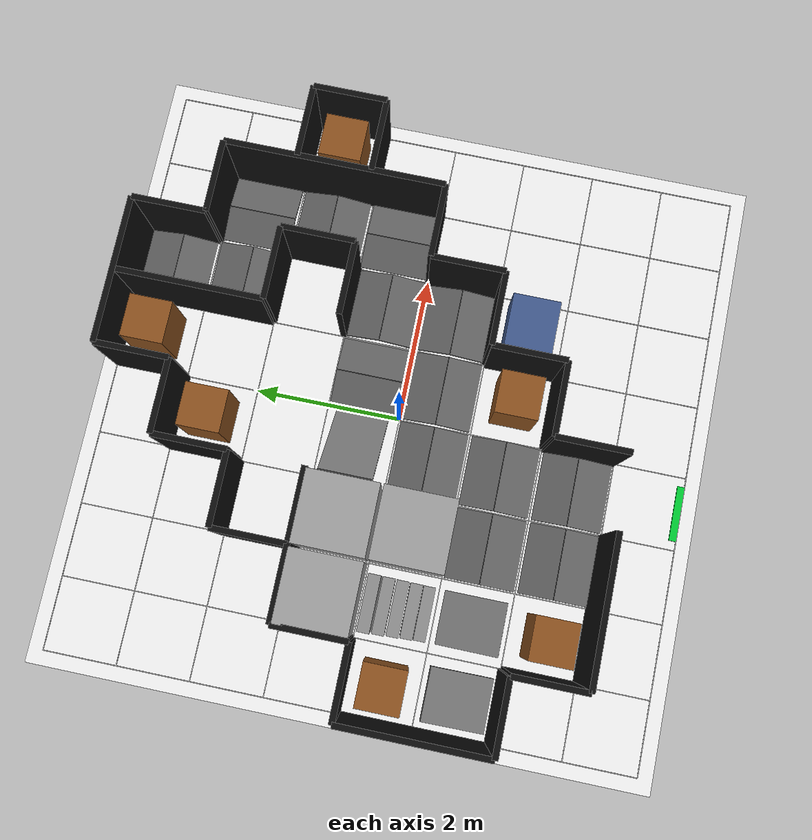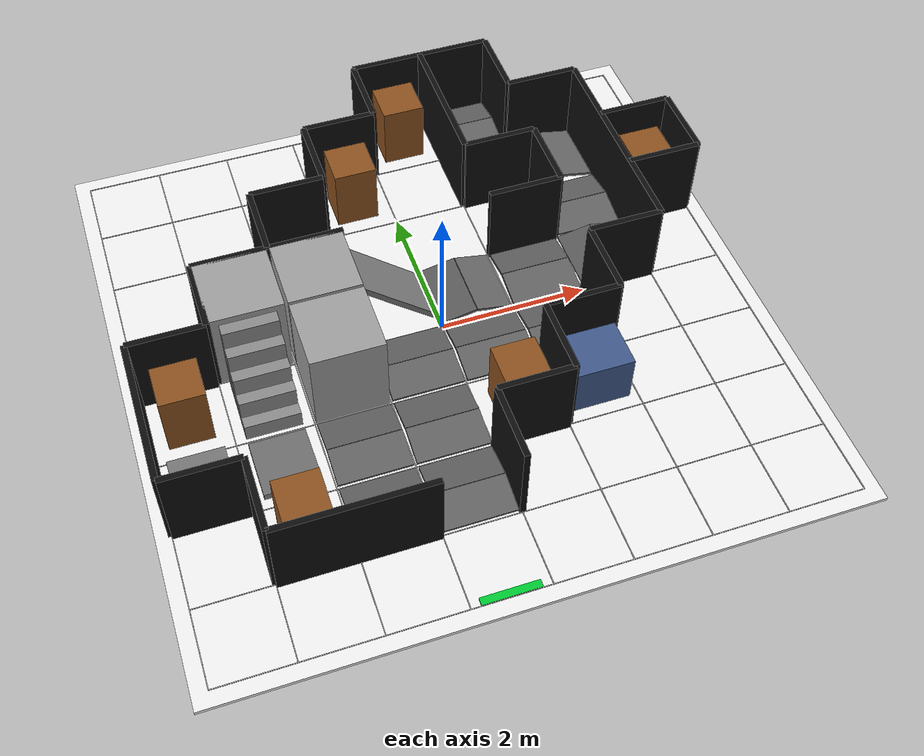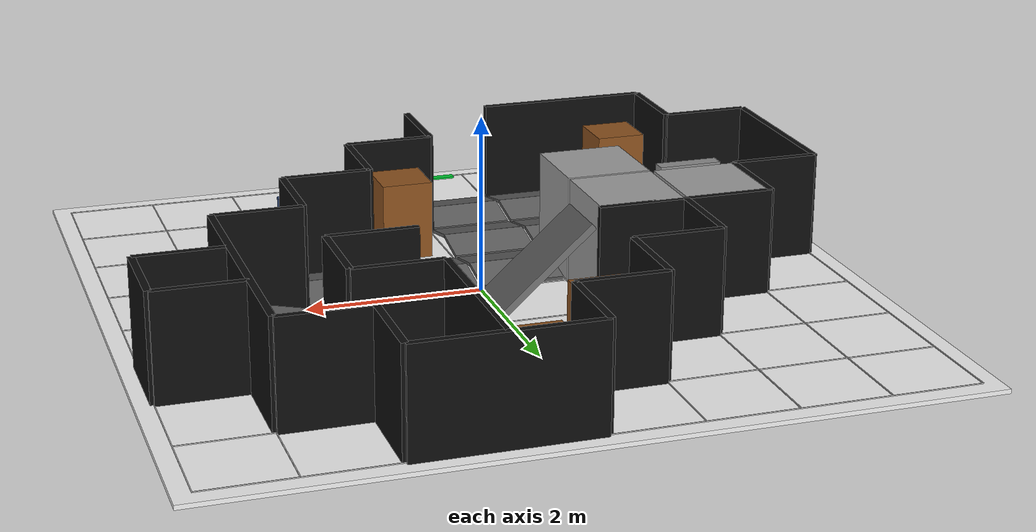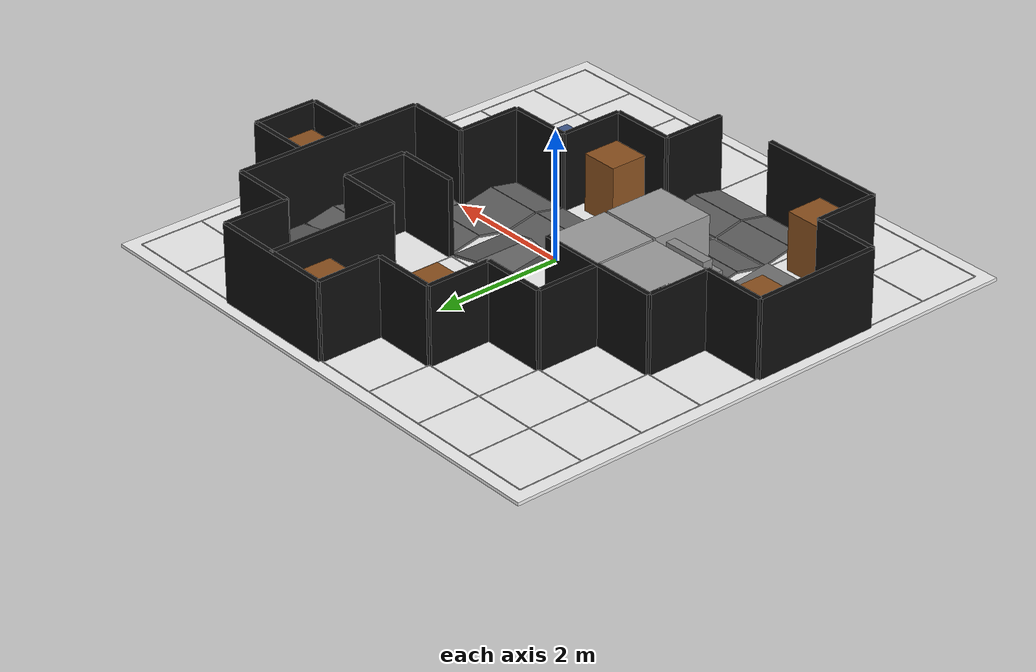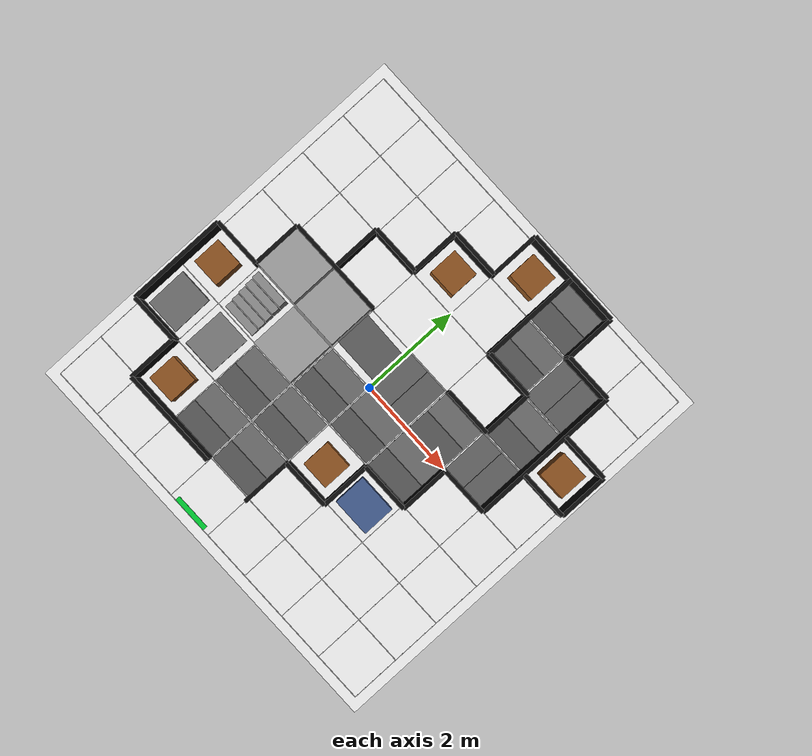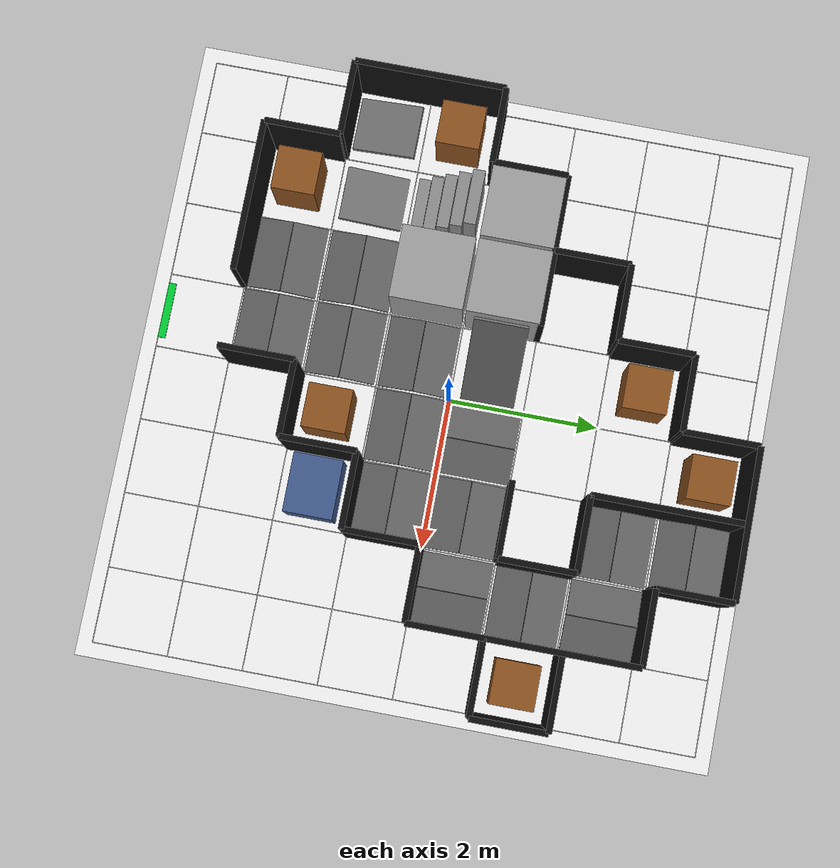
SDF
<?xml version='1.0'?>
<sdf version='1.6'>
  <world name='image_map_world'>
    <gravity>0 0 -9.8</gravity>
    <physics name='default_physics' default='0' type='ode'>
      <max_step_size>0.001</max_step_size>
      <real_time_factor>1</real_time_factor>
      <real_time_update_rate>1000</real_time_update_rate>
    </physics>

    <include>
      <uri>model://sun</uri>
    </include>

    <gui fullscreen='0'>
      <camera name='user_camera'>
        <pose>0 -8 8 0 0.85 1.5708</pose>
      </camera>
    </gui>

  <model name='floor'>
    <static>true</static>
    <pose>0.0000 0.0000 -0.0250 0.000000 0.000000 0.000000</pose>
    <link name='link'>

      <collision name='floor_collision'>
        <geometry><box><size>8.4000 8.4000 0.0500</size></box></geometry>
      </collision>
      <visual name='floor_visual'>
        <geometry><box><size>8.4000 8.4000 0.0500</size></box></geometry>

        <material>
          <ambient>0.95 0.95 0.95 1</ambient>
          <diffuse>0.95 0.95 0.95 1</diffuse>
        </material>
      </visual>
    </link>
  </model>
  <model name='grid_v_0'>
    <static>true</static>
    <pose>-4.0000 0.0000 0.0060 0.000000 0.000000 0.000000</pose>
    <link name='link'>

      <visual name='grid_v_0_visual'>
        <geometry><box><size>0.0100 8.0000 0.0100</size></box></geometry>

        <material>
          <ambient>0.82 0.82 0.82 1</ambient>
          <diffuse>0.82 0.82 0.82 1</diffuse>
        </material>
      </visual>
    </link>
  </model>
  <model name='grid_v_1'>
    <static>true</static>
    <pose>-3.0000 0.0000 0.0060 0.000000 0.000000 0.000000</pose>
    <link name='link'>

      <visual name='grid_v_1_visual'>
        <geometry><box><size>0.0100 8.0000 0.0100</size></box></geometry>

        <material>
          <ambient>0.82 0.82 0.82 1</ambient>
          <diffuse>0.82 0.82 0.82 1</diffuse>
        </material>
      </visual>
    </link>
  </model>
  <model name='grid_v_2'>
    <static>true</static>
    <pose>-2.0000 0.0000 0.0060 0.000000 0.000000 0.000000</pose>
    <link name='link'>

      <visual name='grid_v_2_visual'>
        <geometry><box><size>0.0100 8.0000 0.0100</size></box></geometry>

        <material>
          <ambient>0.82 0.82 0.82 1</ambient>
          <diffuse>0.82 0.82 0.82 1</diffuse>
        </material>
      </visual>
    </link>
  </model>
  <model name='grid_v_3'>
    <static>true</static>
    <pose>-1.0000 0.0000 0.0060 0.000000 0.000000 0.000000</pose>
    <link name='link'>

      <visual name='grid_v_3_visual'>
        <geometry><box><size>0.0100 8.0000 0.0100</size></box></geometry>

        <material>
          <ambient>0.82 0.82 0.82 1</ambient>
          <diffuse>0.82 0.82 0.82 1</diffuse>
        </material>
      </visual>
    </link>
  </model>
  <model name='grid_v_4'>
    <static>true</static>
    <pose>0.0000 0.0000 0.0060 0.000000 0.000000 0.000000</pose>
    <link name='link'>

      <visual name='grid_v_4_visual'>
        <geometry><box><size>0.0100 8.0000 0.0100</size></box></geometry>

        <material>
          <ambient>0.82 0.82 0.82 1</ambient>
          <diffuse>0.82 0.82 0.82 1</diffuse>
        </material>
      </visual>
    </link>
  </model>
  <model name='grid_v_5'>
    <static>true</static>
    <pose>1.0000 0.0000 0.0060 0.000000 0.000000 0.000000</pose>
    <link name='link'>

      <visual name='grid_v_5_visual'>
        <geometry><box><size>0.0100 8.0000 0.0100</size></box></geometry>

        <material>
          <ambient>0.82 0.82 0.82 1</ambient>
          <diffuse>0.82 0.82 0.82 1</diffuse>
        </material>
      </visual>
    </link>
  </model>
  <model name='grid_v_6'>
    <static>true</static>
    <pose>2.0000 0.0000 0.0060 0.000000 0.000000 0.000000</pose>
    <link name='link'>

      <visual name='grid_v_6_visual'>
        <geometry><box><size>0.0100 8.0000 0.0100</size></box></geometry>

        <material>
          <ambient>0.82 0.82 0.82 1</ambient>
          <diffuse>0.82 0.82 0.82 1</diffuse>
        </material>
      </visual>
    </link>
  </model>
  <model name='grid_v_7'>
    <static>true</static>
    <pose>3.0000 0.0000 0.0060 0.000000 0.000000 0.000000</pose>
    <link name='link'>

      <visual name='grid_v_7_visual'>
        <geometry><box><size>0.0100 8.0000 0.0100</size></box></geometry>

        <material>
          <ambient>0.82 0.82 0.82 1</ambient>
          <diffuse>0.82 0.82 0.82 1</diffuse>
        </material>
      </visual>
    </link>
  </model>
  <model name='grid_v_8'>
    <static>true</static>
    <pose>4.0000 0.0000 0.0060 0.000000 0.000000 0.000000</pose>
    <link name='link'>

      <visual name='grid_v_8_visual'>
        <geometry><box><size>0.0100 8.0000 0.0100</size></box></geometry>

        <material>
          <ambient>0.82 0.82 0.82 1</ambient>
          <diffuse>0.82 0.82 0.82 1</diffuse>
        </material>
      </visual>
    </link>
  </model>
  <model name='grid_h_0'>
    <static>true</static>
    <pose>0.0000 4.0000 0.0060 0.000000 0.000000 0.000000</pose>
    <link name='link'>

      <visual name='grid_h_0_visual'>
        <geometry><box><size>8.0000 0.0100 0.0100</size></box></geometry>

        <material>
          <ambient>0.82 0.82 0.82 1</ambient>
          <diffuse>0.82 0.82 0.82 1</diffuse>
        </material>
      </visual>
    </link>
  </model>
  <model name='grid_h_1'>
    <static>true</static>
    <pose>0.0000 3.0000 0.0060 0.000000 0.000000 0.000000</pose>
    <link name='link'>

      <visual name='grid_h_1_visual'>
        <geometry><box><size>8.0000 0.0100 0.0100</size></box></geometry>

        <material>
          <ambient>0.82 0.82 0.82 1</ambient>
          <diffuse>0.82 0.82 0.82 1</diffuse>
        </material>
      </visual>
    </link>
  </model>
  <model name='grid_h_2'>
    <static>true</static>
    <pose>0.0000 2.0000 0.0060 0.000000 0.000000 0.000000</pose>
    <link name='link'>

      <visual name='grid_h_2_visual'>
        <geometry><box><size>8.0000 0.0100 0.0100</size></box></geometry>

        <material>
          <ambient>0.82 0.82 0.82 1</ambient>
          <diffuse>0.82 0.82 0.82 1</diffuse>
        </material>
      </visual>
    </link>
  </model>
  <model name='grid_h_3'>
    <static>true</static>
    <pose>0.0000 1.0000 0.0060 0.000000 0.000000 0.000000</pose>
    <link name='link'>

      <visual name='grid_h_3_visual'>
        <geometry><box><size>8.0000 0.0100 0.0100</size></box></geometry>

        <material>
          <ambient>0.82 0.82 0.82 1</ambient>
          <diffuse>0.82 0.82 0.82 1</diffuse>
        </material>
      </visual>
    </link>
  </model>
  <model name='grid_h_4'>
    <static>true</static>
    <pose>0.0000 0.0000 0.0060 0.000000 0.000000 0.000000</pose>
    <link name='link'>

      <visual name='grid_h_4_visual'>
        <geometry><box><size>8.0000 0.0100 0.0100</size></box></geometry>

        <material>
          <ambient>0.82 0.82 0.82 1</ambient>
          <diffuse>0.82 0.82 0.82 1</diffuse>
        </material>
      </visual>
    </link>
  </model>
  <model name='grid_h_5'>
    <static>true</static>
    <pose>0.0000 -1.0000 0.0060 0.000000 0.000000 0.000000</pose>
    <link name='link'>

      <visual name='grid_h_5_visual'>
        <geometry><box><size>8.0000 0.0100 0.0100</size></box></geometry>

        <material>
          <ambient>0.82 0.82 0.82 1</ambient>
          <diffuse>0.82 0.82 0.82 1</diffuse>
        </material>
      </visual>
    </link>
  </model>
  <model name='grid_h_6'>
    <static>true</static>
    <pose>0.0000 -2.0000 0.0060 0.000000 0.000000 0.000000</pose>
    <link name='link'>

      <visual name='grid_h_6_visual'>
        <geometry><box><size>8.0000 0.0100 0.0100</size></box></geometry>

        <material>
          <ambient>0.82 0.82 0.82 1</ambient>
          <diffuse>0.82 0.82 0.82 1</diffuse>
        </material>
      </visual>
    </link>
  </model>
  <model name='grid_h_7'>
    <static>true</static>
    <pose>0.0000 -3.0000 0.0060 0.000000 0.000000 0.000000</pose>
    <link name='link'>

      <visual name='grid_h_7_visual'>
        <geometry><box><size>8.0000 0.0100 0.0100</size></box></geometry>

        <material>
          <ambient>0.82 0.82 0.82 1</ambient>
          <diffuse>0.82 0.82 0.82 1</diffuse>
        </material>
      </visual>
    </link>
  </model>
  <model name='grid_h_8'>
    <static>true</static>
    <pose>0.0000 -4.0000 0.0060 0.000000 0.000000 0.000000</pose>
    <link name='link'>

      <visual name='grid_h_8_visual'>
        <geometry><box><size>8.0000 0.0100 0.0100</size></box></geometry>

        <material>
          <ambient>0.82 0.82 0.82 1</ambient>
          <diffuse>0.82 0.82 0.82 1</diffuse>
        </material>
      </visual>
    </link>
  </model>
  <model name='wall_h_01'>
    <static>true</static>
    <pose>1.0000 4.0000 0.6000 0.000000 0.000000 0.000000</pose>
    <link name='link'>

      <collision name='wall_h_01_collision'>
        <geometry><box><size>2.0000 0.0800 1.2000</size></box></geometry>
      </collision>
      <visual name='wall_h_01_visual'>
        <geometry><box><size>2.0000 0.0800 1.2000</size></box></geometry>

        <material>
          <ambient>0.05 0.05 0.05 1</ambient>
          <diffuse>0.05 0.05 0.05 1</diffuse>
        </material>
      </visual>
    </link>
  </model>
  <model name='wall_h_02'>
    <static>true</static>
    <pose>-0.5000 3.0000 0.6000 0.000000 0.000000 0.000000</pose>
    <link name='link'>

      <collision name='wall_h_02_collision'>
        <geometry><box><size>1.0000 0.0800 1.2000</size></box></geometry>
      </collision>
      <visual name='wall_h_02_visual'>
        <geometry><box><size>1.0000 0.0800 1.2000</size></box></geometry>

        <material>
          <ambient>0.05 0.05 0.05 1</ambient>
          <diffuse>0.05 0.05 0.05 1</diffuse>
        </material>
      </visual>
    </link>
  </model>
  <model name='wall_h_03'>
    <static>true</static>
    <pose>2.5000 3.0000 0.6000 0.000000 0.000000 0.000000</pose>
    <link name='link'>

      <collision name='wall_h_03_collision'>
        <geometry><box><size>1.0000 0.0800 1.2000</size></box></geometry>
      </collision>
      <visual name='wall_h_03_visual'>
        <geometry><box><size>1.0000 0.0800 1.2000</size></box></geometry>

        <material>
          <ambient>0.05 0.05 0.05 1</ambient>
          <diffuse>0.05 0.05 0.05 1</diffuse>
        </material>
      </visual>
    </link>
  </model>
  <model name='wall_h_04'>
    <static>true</static>
    <pose>-1.5000 2.0000 0.6000 0.000000 0.000000 0.000000</pose>
    <link name='link'>

      <collision name='wall_h_04_collision'>
        <geometry><box><size>1.0000 0.0800 1.2000</size></box></geometry>
      </collision>
      <visual name='wall_h_04_visual'>
        <geometry><box><size>1.0000 0.0800 1.2000</size></box></geometry>

        <material>
          <ambient>0.05 0.05 0.05 1</ambient>
          <diffuse>0.05 0.05 0.05 1</diffuse>
        </material>
      </visual>
    </link>
  </model>
  <model name='wall_h_05'>
    <static>true</static>
    <pose>1.5000 2.0000 0.6000 0.000000 0.000000 0.000000</pose>
    <link name='link'>

      <collision name='wall_h_05_collision'>
        <geometry><box><size>1.0000 0.0800 1.2000</size></box></geometry>
      </collision>
      <visual name='wall_h_05_visual'>
        <geometry><box><size>1.0000 0.0800 1.2000</size></box></geometry>

        <material>
          <ambient>0.05 0.05 0.05 1</ambient>
          <diffuse>0.05 0.05 0.05 1</diffuse>
        </material>
      </visual>
    </link>
  </model>
  <model name='wall_h_06'>
    <static>true</static>
    <pose>3.5000 2.0000 0.6000 0.000000 0.000000 0.000000</pose>
    <link name='link'>

      <collision name='wall_h_06_collision'>
        <geometry><box><size>1.0000 0.0800 1.2000</size></box></geometry>
      </collision>
      <visual name='wall_h_06_visual'>
        <geometry><box><size>1.0000 0.0800 1.2000</size></box></geometry>

        <material>
          <ambient>0.05 0.05 0.05 1</ambient>
          <diffuse>0.05 0.05 0.05 1</diffuse>
        </material>
      </visual>
    </link>
  </model>
  <model name='wall_h_07'>
    <static>true</static>
    <pose>-2.0000 1.0000 0.6000 0.000000 0.000000 0.000000</pose>
    <link name='link'>

      <collision name='wall_h_07_collision'>
        <geometry><box><size>2.0000 0.0800 1.2000</size></box></geometry>
      </collision>
      <visual name='wall_h_07_visual'>
        <geometry><box><size>2.0000 0.0800 1.2000</size></box></geometry>

        <material>
          <ambient>0.05 0.05 0.05 1</ambient>
          <diffuse>0.05 0.05 0.05 1</diffuse>
        </material>
      </visual>
    </link>
  </model>
  <model name='wall_h_08'>
    <static>true</static>
    <pose>1.5000 1.0000 0.6000 0.000000 0.000000 0.000000</pose>
    <link name='link'>

      <collision name='wall_h_08_collision'>
        <geometry><box><size>1.0000 0.0800 1.2000</size></box></geometry>
      </collision>
      <visual name='wall_h_08_visual'>
        <geometry><box><size>1.0000 0.0800 1.2000</size></box></geometry>

        <material>
          <ambient>0.05 0.05 0.05 1</ambient>
          <diffuse>0.05 0.05 0.05 1</diffuse>
        </material>
      </visual>
    </link>
  </model>
  <model name='wall_h_09'>
    <static>true</static>
    <pose>3.5000 1.0000 0.6000 0.000000 0.000000 0.000000</pose>
    <link name='link'>

      <collision name='wall_h_09_collision'>
        <geometry><box><size>1.0000 0.0800 1.2000</size></box></geometry>
      </collision>
      <visual name='wall_h_09_visual'>
        <geometry><box><size>1.0000 0.0800 1.2000</size></box></geometry>

        <material>
          <ambient>0.05 0.05 0.05 1</ambient>
          <diffuse>0.05 0.05 0.05 1</diffuse>
        </material>
      </visual>
    </link>
  </model>
  <model name='wall_h_10'>
    <static>true</static>
    <pose>-3.5000 0.0000 0.6000 0.000000 0.000000 0.000000</pose>
    <link name='link'>

      <collision name='wall_h_10_collision'>
        <geometry><box><size>1.0000 0.0800 1.2000</size></box></geometry>
      </collision>
      <visual name='wall_h_10_visual'>
        <geometry><box><size>1.0000 0.0800 1.2000</size></box></geometry>

        <material>
          <ambient>0.05 0.05 0.05 1</ambient>
          <diffuse>0.05 0.05 0.05 1</diffuse>
        </material>
      </visual>
    </link>
  </model>
  <model name='wall_h_11'>
    <static>true</static>
    <pose>2.5000 0.0000 0.6000 0.000000 0.000000 0.000000</pose>
    <link name='link'>

      <collision name='wall_h_11_collision'>
        <geometry><box><size>1.0000 0.0800 1.2000</size></box></geometry>
      </collision>
      <visual name='wall_h_11_visual'>
        <geometry><box><size>1.0000 0.0800 1.2000</size></box></geometry>

        <material>
          <ambient>0.05 0.05 0.05 1</ambient>
          <diffuse>0.05 0.05 0.05 1</diffuse>
        </material>
      </visual>
    </link>
  </model>
  <model name='wall_h_12'>
    <static>true</static>
    <pose>1.5000 -1.0000 0.6000 0.000000 0.000000 0.000000</pose>
    <link name='link'>

      <collision name='wall_h_12_collision'>
        <geometry><box><size>1.0000 0.0800 1.2000</size></box></geometry>
      </collision>
      <visual name='wall_h_12_visual'>
        <geometry><box><size>1.0000 0.0800 1.2000</size></box></geometry>

        <material>
          <ambient>0.05 0.05 0.05 1</ambient>
          <diffuse>0.05 0.05 0.05 1</diffuse>
        </material>
      </visual>
    </link>
  </model>
  <model name='wall_h_13'>
    <static>true</static>
    <pose>-3.5000 -2.0000 0.6000 0.000000 0.000000 0.000000</pose>
    <link name='link'>

      <collision name='wall_h_13_collision'>
        <geometry><box><size>1.0000 0.0800 1.2000</size></box></geometry>
      </collision>
      <visual name='wall_h_13_visual'>
        <geometry><box><size>1.0000 0.0800 1.2000</size></box></geometry>

        <material>
          <ambient>0.05 0.05 0.05 1</ambient>
          <diffuse>0.05 0.05 0.05 1</diffuse>
        </material>
      </visual>
    </link>
  </model>
  <model name='wall_h_14'>
    <static>true</static>
    <pose>0.5000 -2.0000 0.6000 0.000000 0.000000 0.000000</pose>
    <link name='link'>

      <collision name='wall_h_14_collision'>
        <geometry><box><size>1.0000 0.0800 1.2000</size></box></geometry>
      </collision>
      <visual name='wall_h_14_visual'>
        <geometry><box><size>1.0000 0.0800 1.2000</size></box></geometry>

        <material>
          <ambient>0.05 0.05 0.05 1</ambient>
          <diffuse>0.05 0.05 0.05 1</diffuse>
        </material>
      </visual>
    </link>
  </model>
  <model name='wall_h_15'>
    <static>true</static>
    <pose>-2.0000 -3.0000 0.6000 0.000000 0.000000 0.000000</pose>
    <link name='link'>

      <collision name='wall_h_15_collision'>
        <geometry><box><size>2.0000 0.0800 1.2000</size></box></geometry>
      </collision>
      <visual name='wall_h_15_visual'>
        <geometry><box><size>2.0000 0.0800 1.2000</size></box></geometry>

        <material>
          <ambient>0.05 0.05 0.05 1</ambient>
          <diffuse>0.05 0.05 0.05 1</diffuse>
        </material>
      </visual>
    </link>
  </model>
  <model name='wall_v_01'>
    <static>true</static>
    <pose>0.0000 3.5000 0.6000 0.000000 0.000000 0.000000</pose>
    <link name='link'>

      <collision name='wall_v_01_collision'>
        <geometry><box><size>0.0800 1.0000 1.2000</size></box></geometry>
      </collision>
      <visual name='wall_v_01_visual'>
        <geometry><box><size>0.0800 1.0000 1.2000</size></box></geometry>

        <material>
          <ambient>0.05 0.05 0.05 1</ambient>
          <diffuse>0.05 0.05 0.05 1</diffuse>
        </material>
      </visual>
    </link>
  </model>
  <model name='wall_v_02'>
    <static>true</static>
    <pose>1.0000 3.0000 0.6000 0.000000 0.000000 0.000000</pose>
    <link name='link'>

      <collision name='wall_v_02_collision'>
        <geometry><box><size>0.0800 2.0000 1.2000</size></box></geometry>
      </collision>
      <visual name='wall_v_02_visual'>
        <geometry><box><size>0.0800 2.0000 1.2000</size></box></geometry>

        <material>
          <ambient>0.05 0.05 0.05 1</ambient>
          <diffuse>0.05 0.05 0.05 1</diffuse>
        </material>
      </visual>
    </link>
  </model>
  <model name='wall_v_03'>
    <static>true</static>
    <pose>2.0000 3.5000 0.6000 0.000000 0.000000 0.000000</pose>
    <link name='link'>

      <collision name='wall_v_03_collision'>
        <geometry><box><size>0.0800 1.0000 1.2000</size></box></geometry>
      </collision>
      <visual name='wall_v_03_visual'>
        <geometry><box><size>0.0800 1.0000 1.2000</size></box></geometry>

        <material>
          <ambient>0.05 0.05 0.05 1</ambient>
          <diffuse>0.05 0.05 0.05 1</diffuse>
        </material>
      </visual>
    </link>
  </model>
  <model name='wall_v_04'>
    <static>true</static>
    <pose>-1.0000 2.5000 0.6000 0.000000 0.000000 0.000000</pose>
    <link name='link'>

      <collision name='wall_v_04_collision'>
        <geometry><box><size>0.0800 1.0000 1.2000</size></box></geometry>
      </collision>
      <visual name='wall_v_04_visual'>
        <geometry><box><size>0.0800 1.0000 1.2000</size></box></geometry>

        <material>
          <ambient>0.05 0.05 0.05 1</ambient>
          <diffuse>0.05 0.05 0.05 1</diffuse>
        </material>
      </visual>
    </link>
  </model>
  <model name='wall_v_05'>
    <static>true</static>
    <pose>3.0000 1.5000 0.6000 0.000000 0.000000 0.000000</pose>
    <link name='link'>

      <collision name='wall_v_05_collision'>
        <geometry><box><size>0.0800 3.0000 1.2000</size></box></geometry>
      </collision>
      <visual name='wall_v_05_visual'>
        <geometry><box><size>0.0800 3.0000 1.2000</size></box></geometry>

        <material>
          <ambient>0.05 0.05 0.05 1</ambient>
          <diffuse>0.05 0.05 0.05 1</diffuse>
        </material>
      </visual>
    </link>
  </model>
  <model name='wall_v_06'>
    <static>true</static>
    <pose>4.0000 1.5000 0.6000 0.000000 0.000000 0.000000</pose>
    <link name='link'>

      <collision name='wall_v_06_collision'>
        <geometry><box><size>0.0800 1.0000 1.2000</size></box></geometry>
      </collision>
      <visual name='wall_v_06_visual'>
        <geometry><box><size>0.0800 1.0000 1.2000</size></box></geometry>

        <material>
          <ambient>0.05 0.05 0.05 1</ambient>
          <diffuse>0.05 0.05 0.05 1</diffuse>
        </material>
      </visual>
    </link>
  </model>
  <model name='wall_v_07'>
    <static>true</static>
    <pose>-2.0000 1.5000 0.6000 0.000000 0.000000 0.000000</pose>
    <link name='link'>

      <collision name='wall_v_07_collision'>
        <geometry><box><size>0.0800 1.0000 1.2000</size></box></geometry>
      </collision>
      <visual name='wall_v_07_visual'>
        <geometry><box><size>0.0800 1.0000 1.2000</size></box></geometry>

        <material>
          <ambient>0.05 0.05 0.05 1</ambient>
          <diffuse>0.05 0.05 0.05 1</diffuse>
        </material>
      </visual>
    </link>
  </model>
  <model name='wall_v_08'>
    <static>true</static>
    <pose>-4.0000 -1.0000 0.6000 0.000000 0.000000 0.000000</pose>
    <link name='link'>

      <collision name='wall_v_08_collision'>
        <geometry><box><size>0.0800 2.0000 1.2000</size></box></geometry>
      </collision>
      <visual name='wall_v_08_visual'>
        <geometry><box><size>0.0800 2.0000 1.2000</size></box></geometry>

        <material>
          <ambient>0.05 0.05 0.05 1</ambient>
          <diffuse>0.05 0.05 0.05 1</diffuse>
        </material>
      </visual>
    </link>
  </model>
  <model name='wall_v_09'>
    <static>true</static>
    <pose>-3.0000 0.5000 0.6000 0.000000 0.000000 0.000000</pose>
    <link name='link'>

      <collision name='wall_v_09_collision'>
        <geometry><box><size>0.0800 1.0000 1.2000</size></box></geometry>
      </collision>
      <visual name='wall_v_09_visual'>
        <geometry><box><size>0.0800 1.0000 1.2000</size></box></geometry>

        <material>
          <ambient>0.05 0.05 0.05 1</ambient>
          <diffuse>0.05 0.05 0.05 1</diffuse>
        </material>
      </visual>
    </link>
  </model>
  <model name='wall_v_10'>
    <static>true</static>
    <pose>2.0000 1.5000 0.6000 0.000000 0.000000 0.000000</pose>
    <link name='link'>

      <collision name='wall_v_10_collision'>
        <geometry><box><size>0.0800 1.0000 1.2000</size></box></geometry>
      </collision>
      <visual name='wall_v_10_visual'>
        <geometry><box><size>0.0800 1.0000 1.2000</size></box></geometry>

        <material>
          <ambient>0.05 0.05 0.05 1</ambient>
          <diffuse>0.05 0.05 0.05 1</diffuse>
        </material>
      </visual>
    </link>
  </model>
  <model name='wall_v_11'>
    <static>true</static>
    <pose>2.0000 -0.5000 0.6000 0.000000 0.000000 0.000000</pose>
    <link name='link'>

      <collision name='wall_v_11_collision'>
        <geometry><box><size>0.0800 1.0000 1.2000</size></box></geometry>
      </collision>
      <visual name='wall_v_11_visual'>
        <geometry><box><size>0.0800 1.0000 1.2000</size></box></geometry>

        <material>
          <ambient>0.05 0.05 0.05 1</ambient>
          <diffuse>0.05 0.05 0.05 1</diffuse>
        </material>
      </visual>
    </link>
  </model>
  <model name='wall_v_12'>
    <static>true</static>
    <pose>-3.0000 -2.5000 0.6000 0.000000 0.000000 0.000000</pose>
    <link name='link'>

      <collision name='wall_v_12_collision'>
        <geometry><box><size>0.0800 1.0000 1.2000</size></box></geometry>
      </collision>
      <visual name='wall_v_12_visual'>
        <geometry><box><size>0.0800 1.0000 1.2000</size></box></geometry>

        <material>
          <ambient>0.05 0.05 0.05 1</ambient>
          <diffuse>0.05 0.05 0.05 1</diffuse>
        </material>
      </visual>
    </link>
  </model>
  <model name='wall_v_13'>
    <static>true</static>
    <pose>0.0000 -2.5000 0.6000 0.000000 0.000000 0.000000</pose>
    <link name='link'>

      <collision name='wall_v_13_collision'>
        <geometry><box><size>0.0800 1.0000 1.2000</size></box></geometry>
      </collision>
      <visual name='wall_v_13_visual'>
        <geometry><box><size>0.0800 1.0000 1.2000</size></box></geometry>

        <material>
          <ambient>0.05 0.05 0.05 1</ambient>
          <diffuse>0.05 0.05 0.05 1</diffuse>
        </material>
      </visual>
    </link>
  </model>
  <model name='wall_v_14'>
    <static>true</static>
    <pose>1.0000 -1.5000 0.6000 0.000000 0.000000 0.000000</pose>
    <link name='link'>

      <collision name='wall_v_14_collision'>
        <geometry><box><size>0.0800 1.0000 1.2000</size></box></geometry>
      </collision>
      <visual name='wall_v_14_visual'>
        <geometry><box><size>0.0800 1.0000 1.2000</size></box></geometry>

        <material>
          <ambient>0.05 0.05 0.05 1</ambient>
          <diffuse>0.05 0.05 0.05 1</diffuse>
        </material>
      </visual>
    </link>
  </model>
  <model name='box_1'>
    <static>true</static>
    <pose>0.5000 3.5000 0.4500 0.000000 0.000000 0.000000</pose>
    <link name='link'>

      <collision name='box_1_collision'>
        <geometry><box><size>0.5800 0.5800 0.9000</size></box></geometry>
      </collision>
      <visual name='box_1_visual'>
        <geometry><box><size>0.5800 0.5800 0.9000</size></box></geometry>

        <material>
          <ambient>0.55 0.32 0.12 1</ambient>
          <diffuse>0.55 0.32 0.12 1</diffuse>
        </material>
      </visual>
    </link>
  </model>
  <model name='box_2'>
    <static>true</static>
    <pose>-0.5000 2.5000 0.4500 0.000000 0.000000 0.000000</pose>
    <link name='link'>

      <collision name='box_2_collision'>
        <geometry><box><size>0.5800 0.5800 0.9000</size></box></geometry>
      </collision>
      <visual name='box_2_visual'>
        <geometry><box><size>0.5800 0.5800 0.9000</size></box></geometry>

        <material>
          <ambient>0.55 0.32 0.12 1</ambient>
          <diffuse>0.55 0.32 0.12 1</diffuse>
        </material>
      </visual>
    </link>
  </model>
  <model name='box_3'>
    <static>true</static>
    <pose>3.5000 1.5000 0.4500 0.000000 0.000000 0.000000</pose>
    <link name='link'>

      <collision name='box_3_collision'>
        <geometry><box><size>0.5800 0.5800 0.9000</size></box></geometry>
      </collision>
      <visual name='box_3_visual'>
        <geometry><box><size>0.5800 0.5800 0.9000</size></box></geometry>

        <material>
          <ambient>0.55 0.32 0.12 1</ambient>
          <diffuse>0.55 0.32 0.12 1</diffuse>
        </material>
      </visual>
    </link>
  </model>
  <model name='box_4'>
    <static>true</static>
    <pose>-3.5000 -0.5000 0.4500 0.000000 0.000000 0.000000</pose>
    <link name='link'>

      <collision name='box_4_collision'>
        <geometry><box><size>0.5800 0.5800 0.9000</size></box></geometry>
      </collision>
      <visual name='box_4_visual'>
        <geometry><box><size>0.5800 0.5800 0.9000</size></box></geometry>

        <material>
          <ambient>0.55 0.32 0.12 1</ambient>
          <diffuse>0.55 0.32 0.12 1</diffuse>
        </material>
      </visual>
    </link>
  </model>
  <model name='box_5'>
    <static>true</static>
    <pose>0.5000 -1.5000 0.4500 0.000000 0.000000 0.000000</pose>
    <link name='link'>

      <collision name='box_5_collision'>
        <geometry><box><size>0.5800 0.5800 0.9000</size></box></geometry>
      </collision>
      <visual name='box_5_visual'>
        <geometry><box><size>0.5800 0.5800 0.9000</size></box></geometry>

        <material>
          <ambient>0.55 0.32 0.12 1</ambient>
          <diffuse>0.55 0.32 0.12 1</diffuse>
        </material>
      </visual>
    </link>
  </model>
  <model name='box_6'>
    <static>true</static>
    <pose>-2.5000 -2.5000 0.4500 0.000000 0.000000 0.000000</pose>
    <link name='link'>

      <collision name='box_6_collision'>
        <geometry><box><size>0.5800 0.5800 0.9000</size></box></geometry>
      </collision>
      <visual name='box_6_visual'>
        <geometry><box><size>0.5800 0.5800 0.9000</size></box></geometry>

        <material>
          <ambient>0.55 0.32 0.12 1</ambient>
          <diffuse>0.55 0.32 0.12 1</diffuse>
        </material>
      </visual>
    </link>
  </model>
  <model name='operation_table'>
    <static>true</static>
    <pose>1.5000 -1.5000 0.3500 0.000000 0.000000 0.000000</pose>
    <link name='link'>

      <collision name='operation_table_collision'>
        <geometry><box><size>0.7800 0.6500 0.7000</size></box></geometry>
      </collision>
      <visual name='operation_table_visual'>
        <geometry><box><size>0.7800 0.6500 0.7000</size></box></geometry>

        <material>
          <ambient>0.25 0.35 0.55 1</ambient>
          <diffuse>0.25 0.35 0.55 1</diffuse>
        </material>
      </visual>
    </link>
  </model>
  <model name='ramp_up_left'>
    <static>true</static>
    <pose>-3.5000 -1.5000 0.0944 0.000000 -0.117109 1.570796</pose>
    <link name='link'>

      <collision name='ramp_up_left_collision'>
        <geometry><box><size>0.8500 0.7200 0.0800</size></box></geometry>
      </collision>
      <visual name='ramp_up_left_visual'>
        <geometry><box><size>0.8500 0.7200 0.0800</size></box></geometry>

        <material>
          <ambient>0.45 0.45 0.45 1</ambient>
          <diffuse>0.45 0.45 0.45 1</diffuse>
        </material>
      </visual>
    </link>
  </model>
  <model name='ramp_down_left'>
    <static>true</static>
    <pose>-2.5000 -1.5000 0.0944 0.000000 -0.117109 -1.570796</pose>
    <link name='link'>

      <collision name='ramp_down_left_collision'>
        <geometry><box><size>0.8500 0.7200 0.0800</size></box></geometry>
      </collision>
      <visual name='ramp_down_left_visual'>
        <geometry><box><size>0.8500 0.7200 0.0800</size></box></geometry>

        <material>
          <ambient>0.45 0.45 0.45 1</ambient>
          <diffuse>0.45 0.45 0.45 1</diffuse>
        </material>
      </visual>
    </link>
  </model>
  <model name='ramp_left_mid'>
    <static>true</static>
    <pose>-0.5000 0.5000 0.4833 0.000000 -0.726642 3.141593</pose>
    <link name='link'>

      <collision name='ramp_left_mid_collision'>
        <geometry><box><size>1.3500 0.7200 0.0800</size></box></geometry>
      </collision>
      <visual name='ramp_left_mid_visual'>
        <geometry><box><size>1.3500 0.7200 0.0800</size></box></geometry>

        <material>
          <ambient>0.45 0.45 0.45 1</ambient>
          <diffuse>0.45 0.45 0.45 1</diffuse>
        </material>
      </visual>
    </link>
  </model>
  <model name='stairs_up_step_1'>
    <static>true</static>
    <pose>-2.5000 -0.8600 0.1200 0.000000 0.000000 1.570796</pose>
    <link name='link'>

      <collision name='stairs_up_step_1_collision'>
        <geometry><box><size>0.1600 0.7200 0.2400</size></box></geometry>
      </collision>
      <visual name='stairs_up_step_1_visual'>
        <geometry><box><size>0.1600 0.7200 0.2400</size></box></geometry>

        <material>
          <ambient>0.55 0.55 0.55 1</ambient>
          <diffuse>0.55 0.55 0.55 1</diffuse>
        </material>
      </visual>
    </link>
  </model>
  <model name='stairs_up_step_2'>
    <static>true</static>
    <pose>-2.5000 -0.6800 0.2400 0.000000 0.000000 1.570796</pose>
    <link name='link'>

      <collision name='stairs_up_step_2_collision'>
        <geometry><box><size>0.1600 0.7200 0.4800</size></box></geometry>
      </collision>
      <visual name='stairs_up_step_2_visual'>
        <geometry><box><size>0.1600 0.7200 0.4800</size></box></geometry>

        <material>
          <ambient>0.55 0.55 0.55 1</ambient>
          <diffuse>0.55 0.55 0.55 1</diffuse>
        </material>
      </visual>
    </link>
  </model>
  <model name='stairs_up_step_3'>
    <static>true</static>
    <pose>-2.5000 -0.5000 0.3600 0.000000 0.000000 1.570796</pose>
    <link name='link'>

      <collision name='stairs_up_step_3_collision'>
        <geometry><box><size>0.1600 0.7200 0.7200</size></box></geometry>
      </collision>
      <visual name='stairs_up_step_3_visual'>
        <geometry><box><size>0.1600 0.7200 0.7200</size></box></geometry>

        <material>
          <ambient>0.55 0.55 0.55 1</ambient>
          <diffuse>0.55 0.55 0.55 1</diffuse>
        </material>
      </visual>
    </link>
  </model>
  <model name='stairs_up_step_4'>
    <static>true</static>
    <pose>-2.5000 -0.3200 0.4800 0.000000 0.000000 1.570796</pose>
    <link name='link'>

      <collision name='stairs_up_step_4_collision'>
        <geometry><box><size>0.1600 0.7200 0.9600</size></box></geometry>
      </collision>
      <visual name='stairs_up_step_4_visual'>
        <geometry><box><size>0.1600 0.7200 0.9600</size></box></geometry>

        <material>
          <ambient>0.55 0.55 0.55 1</ambient>
          <diffuse>0.55 0.55 0.55 1</diffuse>
        </material>
      </visual>
    </link>
  </model>
  <model name='stairs_up_step_5'>
    <static>true</static>
    <pose>-2.5000 -0.1400 0.6000 0.000000 0.000000 1.570796</pose>
    <link name='link'>

      <collision name='stairs_up_step_5_collision'>
        <geometry><box><size>0.1600 0.7200 1.2000</size></box></geometry>
      </collision>
      <visual name='stairs_up_step_5_visual'>
        <geometry><box><size>0.1600 0.7200 1.2000</size></box></geometry>

        <material>
          <ambient>0.55 0.55 0.55 1</ambient>
          <diffuse>0.55 0.55 0.55 1</diffuse>
        </material>
      </visual>
    </link>
  </model>
  <model name='second_floor_1'>
    <static>true</static>
    <pose>-2.5000 0.5000 0.6000 0.000000 0.000000 0.000000</pose>
    <link name='link'>

      <collision name='second_floor_1_collision'>
        <geometry><box><size>0.9600 0.9600 1.2000</size></box></geometry>
      </collision>
      <visual name='second_floor_1_visual'>
        <geometry><box><size>0.9600 0.9600 1.2000</size></box></geometry>

        <material>
          <ambient>0.62 0.62 0.62 1</ambient>
          <diffuse>0.62 0.62 0.62 1</diffuse>
        </material>
      </visual>
    </link>
  </model>
  <model name='second_floor_2'>
    <static>true</static>
    <pose>-1.5000 0.5000 0.6000 0.000000 0.000000 0.000000</pose>
    <link name='link'>

      <collision name='second_floor_2_collision'>
        <geometry><box><size>0.9600 0.9600 1.2000</size></box></geometry>
      </collision>
      <visual name='second_floor_2_visual'>
        <geometry><box><size>0.9600 0.9600 1.2000</size></box></geometry>

        <material>
          <ambient>0.62 0.62 0.62 1</ambient>
          <diffuse>0.62 0.62 0.62 1</diffuse>
        </material>
      </visual>
    </link>
  </model>
  <model name='second_floor_3'>
    <static>true</static>
    <pose>-1.5000 -0.5000 0.6000 0.000000 0.000000 0.000000</pose>
    <link name='link'>

      <collision name='second_floor_3_collision'>
        <geometry><box><size>0.9600 0.9600 1.2000</size></box></geometry>
      </collision>
      <visual name='second_floor_3_visual'>
        <geometry><box><size>0.9600 0.9600 1.2000</size></box></geometry>

        <material>
          <ambient>0.62 0.62 0.62 1</ambient>
          <diffuse>0.62 0.62 0.62 1</diffuse>
        </material>
      </visual>
    </link>
  </model>
  <model name='ridge_h_01_a'>
    <static>true</static>
    <pose>1.5000 3.7350 0.0735 -0.205395 0.000000 0.000000</pose>
    <link name='link'>

      <collision name='ridge_h_01_a_collision'>
        <geometry><box><size>0.9600 0.4800 0.0400</size></box></geometry>
      </collision>
      <visual name='ridge_h_01_a_visual'>
        <geometry><box><size>0.9600 0.4800 0.0400</size></box></geometry>

        <material>
          <ambient>0.38 0.38 0.38 1</ambient>
          <diffuse>0.38 0.38 0.38 1</diffuse>
        </material>
      </visual>
    </link>
  </model>
  <model name='ridge_h_01_b'>
    <static>true</static>
    <pose>1.5000 3.2650 0.0735 0.205395 0.000000 0.000000</pose>
    <link name='link'>

      <collision name='ridge_h_01_b_collision'>
        <geometry><box><size>0.9600 0.4800 0.0400</size></box></geometry>
      </collision>
      <visual name='ridge_h_01_b_visual'>
        <geometry><box><size>0.9600 0.4800 0.0400</size></box></geometry>

        <material>
          <ambient>0.38 0.38 0.38 1</ambient>
          <diffuse>0.38 0.38 0.38 1</diffuse>
        </material>
      </visual>
    </link>
  </model>
  <model name='ridge_h_02_a'>
    <static>true</static>
    <pose>1.5000 2.7350 0.0735 -0.205395 0.000000 0.000000</pose>
    <link name='link'>

      <collision name='ridge_h_02_a_collision'>
        <geometry><box><size>0.9600 0.4800 0.0400</size></box></geometry>
      </collision>
      <visual name='ridge_h_02_a_visual'>
        <geometry><box><size>0.9600 0.4800 0.0400</size></box></geometry>

        <material>
          <ambient>0.38 0.38 0.38 1</ambient>
          <diffuse>0.38 0.38 0.38 1</diffuse>
        </material>
      </visual>
    </link>
  </model>
  <model name='ridge_h_02_b'>
    <static>true</static>
    <pose>1.5000 2.2650 0.0735 0.205395 0.000000 0.000000</pose>
    <link name='link'>

      <collision name='ridge_h_02_b_collision'>
        <geometry><box><size>0.9600 0.4800 0.0400</size></box></geometry>
      </collision>
      <visual name='ridge_h_02_b_visual'>
        <geometry><box><size>0.9600 0.4800 0.0400</size></box></geometry>

        <material>
          <ambient>0.38 0.38 0.38 1</ambient>
          <diffuse>0.38 0.38 0.38 1</diffuse>
        </material>
      </visual>
    </link>
  </model>
  <model name='ridge_h_03_a'>
    <static>true</static>
    <pose>2.5000 1.7350 0.0735 -0.205395 0.000000 0.000000</pose>
    <link name='link'>

      <collision name='ridge_h_03_a_collision'>
        <geometry><box><size>0.9600 0.4800 0.0400</size></box></geometry>
      </collision>
      <visual name='ridge_h_03_a_visual'>
        <geometry><box><size>0.9600 0.4800 0.0400</size></box></geometry>

        <material>
          <ambient>0.38 0.38 0.38 1</ambient>
          <diffuse>0.38 0.38 0.38 1</diffuse>
        </material>
      </visual>
    </link>
  </model>
  <model name='ridge_h_03_b'>
    <static>true</static>
    <pose>2.5000 1.2650 0.0735 0.205395 0.000000 0.000000</pose>
    <link name='link'>

      <collision name='ridge_h_03_b_collision'>
        <geometry><box><size>0.9600 0.4800 0.0400</size></box></geometry>
      </collision>
      <visual name='ridge_h_03_b_visual'>
        <geometry><box><size>0.9600 0.4800 0.0400</size></box></geometry>

        <material>
          <ambient>0.38 0.38 0.38 1</ambient>
          <diffuse>0.38 0.38 0.38 1</diffuse>
        </material>
      </visual>
    </link>
  </model>
  <model name='ridge_h_04_a'>
    <static>true</static>
    <pose>1.5000 0.7350 0.0735 -0.205395 0.000000 0.000000</pose>
    <link name='link'>

      <collision name='ridge_h_04_a_collision'>
        <geometry><box><size>0.9600 0.4800 0.0400</size></box></geometry>
      </collision>
      <visual name='ridge_h_04_a_visual'>
        <geometry><box><size>0.9600 0.4800 0.0400</size></box></geometry>

        <material>
          <ambient>0.38 0.38 0.38 1</ambient>
          <diffuse>0.38 0.38 0.38 1</diffuse>
        </material>
      </visual>
    </link>
  </model>
  <model name='ridge_h_04_b'>
    <static>true</static>
    <pose>1.5000 0.2650 0.0735 0.205395 0.000000 0.000000</pose>
    <link name='link'>

      <collision name='ridge_h_04_b_collision'>
        <geometry><box><size>0.9600 0.4800 0.0400</size></box></geometry>
      </collision>
      <visual name='ridge_h_04_b_visual'>
        <geometry><box><size>0.9600 0.4800 0.0400</size></box></geometry>

        <material>
          <ambient>0.38 0.38 0.38 1</ambient>
          <diffuse>0.38 0.38 0.38 1</diffuse>
        </material>
      </visual>
    </link>
  </model>
  <model name='ridge_h_05_a'>
    <static>true</static>
    <pose>-0.5000 -0.2650 0.0735 -0.205395 0.000000 0.000000</pose>
    <link name='link'>

      <collision name='ridge_h_05_a_collision'>
        <geometry><box><size>0.9600 0.4800 0.0400</size></box></geometry>
      </collision>
      <visual name='ridge_h_05_a_visual'>
        <geometry><box><size>0.9600 0.4800 0.0400</size></box></geometry>

        <material>
          <ambient>0.38 0.38 0.38 1</ambient>
          <diffuse>0.38 0.38 0.38 1</diffuse>
        </material>
      </visual>
    </link>
  </model>
  <model name='ridge_h_05_b'>
    <static>true</static>
    <pose>-0.5000 -0.7350 0.0735 0.205395 0.000000 0.000000</pose>
    <link name='link'>

      <collision name='ridge_h_05_b_collision'>
        <geometry><box><size>0.9600 0.4800 0.0400</size></box></geometry>
      </collision>
      <visual name='ridge_h_05_b_visual'>
        <geometry><box><size>0.9600 0.4800 0.0400</size></box></geometry>

        <material>
          <ambient>0.38 0.38 0.38 1</ambient>
          <diffuse>0.38 0.38 0.38 1</diffuse>
        </material>
      </visual>
    </link>
  </model>
  <model name='ridge_h_06_a'>
    <static>true</static>
    <pose>0.5000 -0.2650 0.0735 -0.205395 0.000000 0.000000</pose>
    <link name='link'>

      <collision name='ridge_h_06_a_collision'>
        <geometry><box><size>0.9600 0.4800 0.0400</size></box></geometry>
      </collision>
      <visual name='ridge_h_06_a_visual'>
        <geometry><box><size>0.9600 0.4800 0.0400</size></box></geometry>

        <material>
          <ambient>0.38 0.38 0.38 1</ambient>
          <diffuse>0.38 0.38 0.38 1</diffuse>
        </material>
      </visual>
    </link>
  </model>
  <model name='ridge_h_06_b'>
    <static>true</static>
    <pose>0.5000 -0.7350 0.0735 0.205395 0.000000 0.000000</pose>
    <link name='link'>

      <collision name='ridge_h_06_b_collision'>
        <geometry><box><size>0.9600 0.4800 0.0400</size></box></geometry>
      </collision>
      <visual name='ridge_h_06_b_visual'>
        <geometry><box><size>0.9600 0.4800 0.0400</size></box></geometry>

        <material>
          <ambient>0.38 0.38 0.38 1</ambient>
          <diffuse>0.38 0.38 0.38 1</diffuse>
        </material>
      </visual>
    </link>
  </model>
  <model name='ridge_h_07_a'>
    <static>true</static>
    <pose>1.5000 -0.2650 0.0735 -0.205395 0.000000 0.000000</pose>
    <link name='link'>

      <collision name='ridge_h_07_a_collision'>
        <geometry><box><size>0.9600 0.4800 0.0400</size></box></geometry>
      </collision>
      <visual name='ridge_h_07_a_visual'>
        <geometry><box><size>0.9600 0.4800 0.0400</size></box></geometry>

        <material>
          <ambient>0.38 0.38 0.38 1</ambient>
          <diffuse>0.38 0.38 0.38 1</diffuse>
        </material>
      </visual>
    </link>
  </model>
  <model name='ridge_h_07_b'>
    <static>true</static>
    <pose>1.5000 -0.7350 0.0735 0.205395 0.000000 0.000000</pose>
    <link name='link'>

      <collision name='ridge_h_07_b_collision'>
        <geometry><box><size>0.9600 0.4800 0.0400</size></box></geometry>
      </collision>
      <visual name='ridge_h_07_b_visual'>
        <geometry><box><size>0.9600 0.4800 0.0400</size></box></geometry>

        <material>
          <ambient>0.38 0.38 0.38 1</ambient>
          <diffuse>0.38 0.38 0.38 1</diffuse>
        </material>
      </visual>
    </link>
  </model>
  <model name='ridge_h_08_a'>
    <static>true</static>
    <pose>-1.5000 -1.2650 0.0735 -0.205395 0.000000 0.000000</pose>
    <link name='link'>

      <collision name='ridge_h_08_a_collision'>
        <geometry><box><size>0.9600 0.4800 0.0400</size></box></geometry>
      </collision>
      <visual name='ridge_h_08_a_visual'>
        <geometry><box><size>0.9600 0.4800 0.0400</size></box></geometry>

        <material>
          <ambient>0.38 0.38 0.38 1</ambient>
          <diffuse>0.38 0.38 0.38 1</diffuse>
        </material>
      </visual>
    </link>
  </model>
  <model name='ridge_h_08_b'>
    <static>true</static>
    <pose>-1.5000 -1.7350 0.0735 0.205395 0.000000 0.000000</pose>
    <link name='link'>

      <collision name='ridge_h_08_b_collision'>
        <geometry><box><size>0.9600 0.4800 0.0400</size></box></geometry>
      </collision>
      <visual name='ridge_h_08_b_visual'>
        <geometry><box><size>0.9600 0.4800 0.0400</size></box></geometry>

        <material>
          <ambient>0.38 0.38 0.38 1</ambient>
          <diffuse>0.38 0.38 0.38 1</diffuse>
        </material>
      </visual>
    </link>
  </model>
  <model name='ridge_h_09_a'>
    <static>true</static>
    <pose>-0.5000 -1.2650 0.0735 -0.205395 0.000000 0.000000</pose>
    <link name='link'>

      <collision name='ridge_h_09_a_collision'>
        <geometry><box><size>0.9600 0.4800 0.0400</size></box></geometry>
      </collision>
      <visual name='ridge_h_09_a_visual'>
        <geometry><box><size>0.9600 0.4800 0.0400</size></box></geometry>

        <material>
          <ambient>0.38 0.38 0.38 1</ambient>
          <diffuse>0.38 0.38 0.38 1</diffuse>
        </material>
      </visual>
    </link>
  </model>
  <model name='ridge_h_09_b'>
    <static>true</static>
    <pose>-0.5000 -1.7350 0.0735 0.205395 0.000000 0.000000</pose>
    <link name='link'>

      <collision name='ridge_h_09_b_collision'>
        <geometry><box><size>0.9600 0.4800 0.0400</size></box></geometry>
      </collision>
      <visual name='ridge_h_09_b_visual'>
        <geometry><box><size>0.9600 0.4800 0.0400</size></box></geometry>

        <material>
          <ambient>0.38 0.38 0.38 1</ambient>
          <diffuse>0.38 0.38 0.38 1</diffuse>
        </material>
      </visual>
    </link>
  </model>
  <model name='ridge_h_10_a'>
    <static>true</static>
    <pose>-1.5000 -2.2650 0.0735 -0.205395 0.000000 0.000000</pose>
    <link name='link'>

      <collision name='ridge_h_10_a_collision'>
        <geometry><box><size>0.9600 0.4800 0.0400</size></box></geometry>
      </collision>
      <visual name='ridge_h_10_a_visual'>
        <geometry><box><size>0.9600 0.4800 0.0400</size></box></geometry>

        <material>
          <ambient>0.38 0.38 0.38 1</ambient>
          <diffuse>0.38 0.38 0.38 1</diffuse>
        </material>
      </visual>
    </link>
  </model>
  <model name='ridge_h_10_b'>
    <static>true</static>
    <pose>-1.5000 -2.7350 0.0735 0.205395 0.000000 0.000000</pose>
    <link name='link'>

      <collision name='ridge_h_10_b_collision'>
        <geometry><box><size>0.9600 0.4800 0.0400</size></box></geometry>
      </collision>
      <visual name='ridge_h_10_b_visual'>
        <geometry><box><size>0.9600 0.4800 0.0400</size></box></geometry>

        <material>
          <ambient>0.38 0.38 0.38 1</ambient>
          <diffuse>0.38 0.38 0.38 1</diffuse>
        </material>
      </visual>
    </link>
  </model>
  <model name='ridge_h_11_a'>
    <static>true</static>
    <pose>-0.5000 -2.2650 0.0735 -0.205395 0.000000 0.000000</pose>
    <link name='link'>

      <collision name='ridge_h_11_a_collision'>
        <geometry><box><size>0.9600 0.4800 0.0400</size></box></geometry>
      </collision>
      <visual name='ridge_h_11_a_visual'>
        <geometry><box><size>0.9600 0.4800 0.0400</size></box></geometry>

        <material>
          <ambient>0.38 0.38 0.38 1</ambient>
          <diffuse>0.38 0.38 0.38 1</diffuse>
        </material>
      </visual>
    </link>
  </model>
  <model name='ridge_h_11_b'>
    <static>true</static>
    <pose>-0.5000 -2.7350 0.0735 0.205395 0.000000 0.000000</pose>
    <link name='link'>

      <collision name='ridge_h_11_b_collision'>
        <geometry><box><size>0.9600 0.4800 0.0400</size></box></geometry>
      </collision>
      <visual name='ridge_h_11_b_visual'>
        <geometry><box><size>0.9600 0.4800 0.0400</size></box></geometry>

        <material>
          <ambient>0.38 0.38 0.38 1</ambient>
          <diffuse>0.38 0.38 0.38 1</diffuse>
        </material>
      </visual>
    </link>
  </model>
  <model name='ridge_v_01_a'>
    <static>true</static>
    <pose>2.7350 2.5000 0.0735 0.000000 0.205395 0.000000</pose>
    <link name='link'>

      <collision name='ridge_v_01_a_collision'>
        <geometry><box><size>0.4800 0.9600 0.0400</size></box></geometry>
      </collision>
      <visual name='ridge_v_01_a_visual'>
        <geometry><box><size>0.4800 0.9600 0.0400</size></box></geometry>

        <material>
          <ambient>0.38 0.38 0.38 1</ambient>
          <diffuse>0.38 0.38 0.38 1</diffuse>
        </material>
      </visual>
    </link>
  </model>
  <model name='ridge_v_01_b'>
    <static>true</static>
    <pose>2.2650 2.5000 0.0735 0.000000 -0.205395 0.000000</pose>
    <link name='link'>

      <collision name='ridge_v_01_b_collision'>
        <geometry><box><size>0.4800 0.9600 0.0400</size></box></geometry>
      </collision>
      <visual name='ridge_v_01_b_visual'>
        <geometry><box><size>0.4800 0.9600 0.0400</size></box></geometry>

        <material>
          <ambient>0.38 0.38 0.38 1</ambient>
          <diffuse>0.38 0.38 0.38 1</diffuse>
        </material>
      </visual>
    </link>
  </model>
  <model name='ridge_v_02_a'>
    <static>true</static>
    <pose>0.7350 0.5000 0.0735 0.000000 0.205395 0.000000</pose>
    <link name='link'>

      <collision name='ridge_v_02_a_collision'>
        <geometry><box><size>0.4800 0.9600 0.0400</size></box></geometry>
      </collision>
      <visual name='ridge_v_02_a_visual'>
        <geometry><box><size>0.4800 0.9600 0.0400</size></box></geometry>

        <material>
          <ambient>0.38 0.38 0.38 1</ambient>
          <diffuse>0.38 0.38 0.38 1</diffuse>
        </material>
      </visual>
    </link>
  </model>
  <model name='ridge_v_02_b'>
    <static>true</static>
    <pose>0.2650 0.5000 0.0735 0.000000 -0.205395 0.000000</pose>
    <link name='link'>

      <collision name='ridge_v_02_b_collision'>
        <geometry><box><size>0.4800 0.9600 0.0400</size></box></geometry>
      </collision>
      <visual name='ridge_v_02_b_visual'>
        <geometry><box><size>0.4800 0.9600 0.0400</size></box></geometry>

        <material>
          <ambient>0.38 0.38 0.38 1</ambient>
          <diffuse>0.38 0.38 0.38 1</diffuse>
        </material>
      </visual>
    </link>
  </model>
  <model name='ridge_v_03_a'>
    <static>true</static>
    <pose>2.7350 0.5000 0.0735 0.000000 0.205395 0.000000</pose>
    <link name='link'>

      <collision name='ridge_v_03_a_collision'>
        <geometry><box><size>0.4800 0.9600 0.0400</size></box></geometry>
      </collision>
      <visual name='ridge_v_03_a_visual'>
        <geometry><box><size>0.4800 0.9600 0.0400</size></box></geometry>

        <material>
          <ambient>0.38 0.38 0.38 1</ambient>
          <diffuse>0.38 0.38 0.38 1</diffuse>
        </material>
      </visual>
    </link>
  </model>
  <model name='ridge_v_03_b'>
    <static>true</static>
    <pose>2.2650 0.5000 0.0735 0.000000 -0.205395 0.000000</pose>
    <link name='link'>

      <collision name='ridge_v_03_b_collision'>
        <geometry><box><size>0.4800 0.9600 0.0400</size></box></geometry>
      </collision>
      <visual name='ridge_v_03_b_visual'>
        <geometry><box><size>0.4800 0.9600 0.0400</size></box></geometry>

        <material>
          <ambient>0.38 0.38 0.38 1</ambient>
          <diffuse>0.38 0.38 0.38 1</diffuse>
        </material>
      </visual>
    </link>
  </model>
  <model name='door_marker'>
    <static>true</static>
    <pose>-0.5000 -3.9500 0.0110 0.000000 0.000000 0.000000</pose>
    <link name='link'>

      <visual name='door_marker_visual'>
        <geometry><box><size>0.7500 0.1000 0.0200</size></box></geometry>

        <material>
          <ambient>0.0 0.8 0.2 1</ambient>
          <diffuse>0.0 0.8 0.2 1</diffuse>
        </material>
      </visual>
    </link>
  </model>

  </world>
</sdf>
